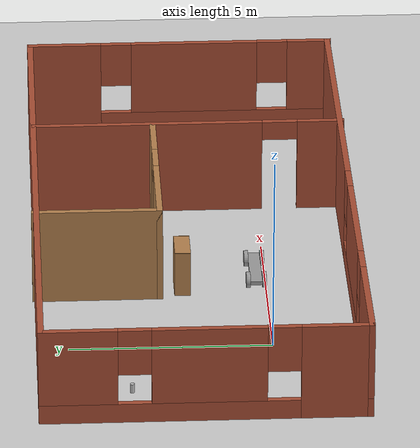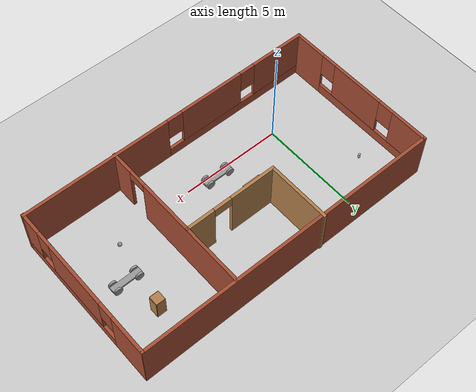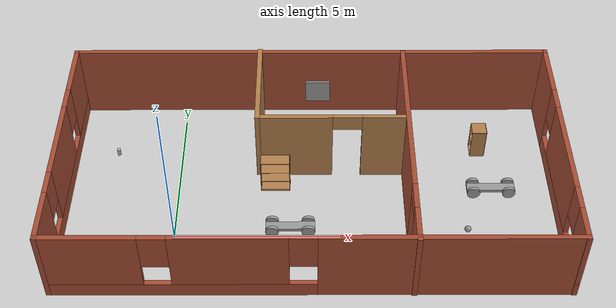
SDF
<sdf version="1.6">
 <world name="default">
  <plugin name="hello" filename="libhello.so"/>
  <light name="sun" type="directional">
   <pose>0 0 10 0 -0 0</pose>
   <diffuse>0.8 0.8 0.8 1</diffuse>
   <specular>0.2 0.2 0.2 1</specular>
   <attenuation>
    <range>1000</range>
    <constant>0.9</constant>
    <linear>0.01</linear>
    <quadratic>0.001</quadratic>
   </attenuation>
   <direction>-0.5 0.1 -0.9</direction>
  </light>
  <model name="ground_plane">
   <static>1</static>
   <link name="link">
    <collision name="collision">
     <geometry><plane><normal>0 0 1</normal><size>100 100</size></plane></geometry>
     <surface>
      <contact><collide_bitmask>65535</collide_bitmask></contact>
      <friction><ode><mu>100</mu><mu2>50</mu2></ode></friction>
     </surface>
    </collision>
    <visual name="visual">
     <cast_shadows>0</cast_shadows>
     <geometry><plane><normal>0 0 1</normal><size>100 100</size></plane></geometry>
     <material>
      <script><uri>file://media/materials/scripts/gazebo.material</uri><name>Gazebo/Grey</name></script>
     </material>
    </visual>
   </link>
  </model>
  <gravity>0 0 -9.8</gravity>
  <magnetic_field>6e-06 2.3e-05 -4.2e-05</magnetic_field>
  <atmosphere type="adiabatic"/>
  <physics name="default_physics" default="0" type="ode">
   <max_step_size>0.001</max_step_size>
   <real_time_factor>1</real_time_factor>
   <real_time_update_rate>1000</real_time_update_rate>
  </physics>
  <scene><ambient>0.4 0.4 0.4 1</ambient><background>0.7 0.7 0.7 1</background><shadows>1</shadows></scene>
  <spherical_coordinates>
   <surface_model>EARTH_WGS84</surface_model>
   <latitude_deg>0</latitude_deg>
   <longitude_deg>0</longitude_deg>
   <elevation>0</elevation>
   <heading_deg>0</heading_deg>
  </spherical_coordinates>
  <model name="my_w">
   <pose>4.16042 1.80706 0 0 -0 0</pose>
   <link name="Wall_0">
    <pose>-7.59042 -0.005682 0 0 -0 1.5708</pose>
    <visual name="Wall_0_Visual_0">
     <pose>-3.12831 0 1.25 0 -0 0</pose>
     <geometry><box><size>1.74339 0.15 2.5</size></box></geometry>
     <material>
      <script><uri>file://media/materials/scripts/gazebo.material</uri><name>Gazebo/Bricks</name></script>
      <ambient>1 1 1 1</ambient>
     </material>
     <meta><layer>0</layer></meta>
    </visual>
    <collision name="Wall_0_Collision_0">
     <geometry><box><size>1.74339 0.15 2.5</size></box></geometry>
     <pose>-3.12831 0 1.25 0 -0 0</pose>
    </collision>
    <visual name="Wall_0_Visual_1">
     <pose>0.871695 0 0.25 0 -0 0</pose>
     <geometry><box><size>6.25661 0.15 0.5</size></box></geometry>
     <material>
      <script><uri>file://media/materials/scripts/gazebo.material</uri><name>Gazebo/Bricks</name></script>
      <ambient>1 1 1 1</ambient>
     </material>
     <meta><layer>0</layer></meta>
    </visual>
    <collision name="Wall_0_Collision_1">
     <geometry><box><size>6.25661 0.15 0.5</size></box></geometry>
     <pose>0.871695 0 0.25 0 -0 0</pose>
    </collision>
    <visual name="Wall_0_Visual_2">
     <pose>-0.076564 0 1.5 0 -0 0</pose>
     <geometry><box><size>2.76009 0.15 2</size></box></geometry>
     <material>
      <script><uri>file://media/materials/scripts/gazebo.material</uri><name>Gazebo/Bricks</name></script>
      <ambient>1 1 1 1</ambient>
     </material>
     <meta><layer>0</layer></meta>
    </visual>
    <collision name="Wall_0_Collision_2">
     <geometry><box><size>2.76009 0.15 2</size></box></geometry>
     <pose>-0.076564 0 1.5 0 -0 0</pose>
    </collision>
    <visual name="Wall_0_Visual_3">
     <pose>3.05174 0 1.5 0 -0 0</pose>
     <geometry><box><size>1.89652 0.15 2</size></box></geometry>
     <material>
      <script><uri>file://media/materials/scripts/gazebo.material</uri><name>Gazebo/Bricks</name></script>
      <ambient>1 1 1 1</ambient>
     </material>
     <meta><layer>0</layer></meta>
    </visual>
    <collision name="Wall_0_Collision_3">
     <geometry><box><size>1.89652 0.15 2</size></box></geometry>
     <pose>3.05174 0 1.5 0 -0 0</pose>
    </collision>
    <visual name="Wall_0_Visual_4">
     <pose>-1.85661 0 1.9 0 -0 0</pose>
     <geometry><box><size>0.8 0.15 1.2</size></box></geometry>
     <material>
      <script><uri>file://media/materials/scripts/gazebo.material</uri><name>Gazebo/Bricks</name></script>
      <ambient>1 1 1 1</ambient>
     </material>
     <meta><layer>0</layer></meta>
    </visual>
    <collision name="Wall_0_Collision_4">
     <geometry><box><size>0.8 0.15 1.2</size></box></geometry>
     <pose>-1.85661 0 1.9 0 -0 0</pose>
    </collision>
    <visual name="Wall_0_Visual_5">
     <pose>1.70348 0 1.9 0 -0 0</pose>
     <geometry><box><size>0.8 0.15 1.2</size></box></geometry>
     <material>
      <script><uri>file://media/materials/scripts/gazebo.material</uri><name>Gazebo/Bricks</name></script>
      <ambient>1 1 1 1</ambient>
     </material>
     <meta><layer>0</layer></meta>
    </visual>
    <collision name="Wall_0_Collision_5">
     <geometry><box><size>0.8 0.15 1.2</size></box></geometry>
     <pose>1.70348 0 1.9 0 -0 0</pose>
    </collision>
   </link>
   <link name="Wall_1">
    <collision name="Wall_1_Collision">
     <geometry><box><size>15.3308 0.15 2.5</size></box></geometry>
     <pose>0 0 1.25 0 -0 0</pose>
    </collision>
    <visual name="Wall_1_Visual">
     <pose>0 0 1.25 0 -0 0</pose>
     <geometry><box><size>15.3308 0.15 2.5</size></box></geometry>
     <material>
      <script><uri>file://media/materials/scripts/gazebo.material</uri><name>Gazebo/Bricks</name></script>
      <ambient>1 1 1 1</ambient>
     </material>
     <meta><layer>0</layer></meta>
    </visual>
    <pose>0 3.91932 0 0 -0 0</pose>
   </link>
   <link name="Wall_2">
    <pose>7.59042 -0.032282 0 0 0 -1.5708</pose>
    <visual name="Wall_2_Visual_0">
     <pose>-3.04481 0 1.25 0 -0 0</pose>
     <geometry><box><size>1.91037 0.15 2.5</size></box></geometry>
     <material>
      <script><uri>file://media/materials/scripts/gazebo.material</uri><name>Gazebo/Bricks</name></script>
      <ambient>1 1 1 1</ambient>
     </material>
     <meta><layer>0</layer></meta>
    </visual>
    <collision name="Wall_2_Collision_0">
     <geometry><box><size>1.91037 0.15 2.5</size></box></geometry>
     <pose>-3.04481 0 1.25 0 -0 0</pose>
    </collision>
    <visual name="Wall_2_Visual_1">
     <pose>0.955187 0 0.25 0 -0 0</pose>
     <geometry><box><size>6.08963 0.15 0.5</size></box></geometry>
     <material>
      <script><uri>file://media/materials/scripts/gazebo.material</uri><name>Gazebo/Bricks</name></script>
      <ambient>1 1 1 1</ambient>
     </material>
     <meta><layer>0</layer></meta>
    </visual>
    <collision name="Wall_2_Collision_1">
     <geometry><box><size>6.08963 0.15 0.5</size></box></geometry>
     <pose>0.955187 0 0.25 0 -0 0</pose>
    </collision>
    <visual name="Wall_2_Visual_2">
     <pose>0.373608 0 1.5 0 -0 0</pose>
     <geometry><box><size>3.32647 0.15 2</size></box></geometry>
     <material>
      <script><uri>file://media/materials/scripts/gazebo.material</uri><name>Gazebo/Bricks</name></script>
      <ambient>1 1 1 1</ambient>
     </material>
     <meta><layer>0</layer></meta>
    </visual>
    <collision name="Wall_2_Collision_2">
     <geometry><box><size>3.32647 0.15 2</size></box></geometry>
     <pose>0.373608 0 1.5 0 -0 0</pose>
    </collision>
    <visual name="Wall_2_Visual_3">
     <pose>3.41842 0 1.5 0 -0 0</pose>
     <geometry><box><size>1.16316 0.15 2</size></box></geometry>
     <material>
      <script><uri>file://media/materials/scripts/gazebo.material</uri><name>Gazebo/Bricks</name></script>
      <ambient>1 1 1 1</ambient>
     </material>
     <meta><layer>0</layer></meta>
    </visual>
    <collision name="Wall_2_Collision_3">
     <geometry><box><size>1.16316 0.15 2</size></box></geometry>
     <pose>3.41842 0 1.5 0 -0 0</pose>
    </collision>
    <visual name="Wall_2_Visual_4">
     <pose>-1.68963 0 1.9 0 -0 0</pose>
     <geometry><box><size>0.8 0.15 1.2</size></box></geometry>
     <material>
      <script><uri>file://media/materials/scripts/gazebo.material</uri><name>Gazebo/Bricks</name></script>
      <ambient>1 1 1 1</ambient>
     </material>
     <meta><layer>0</layer></meta>
    </visual>
    <collision name="Wall_2_Collision_4">
     <geometry><box><size>0.8 0.15 1.2</size></box></geometry>
     <pose>-1.68963 0 1.9 0 -0 0</pose>
    </collision>
    <visual name="Wall_2_Visual_5">
     <pose>2.43684 0 1.9 0 -0 0</pose>
     <geometry><box><size>0.8 0.15 1.2</size></box></geometry>
     <material>
      <script><uri>file://media/materials/scripts/gazebo.material</uri><name>Gazebo/Bricks</name></script>
      <ambient>1 1 1 1</ambient>
     </material>
     <meta><layer>0</layer></meta>
    </visual>
    <collision name="Wall_2_Collision_5">
     <geometry><box><size>0.8 0.15 1.2</size></box></geometry>
     <pose>2.43684 0 1.9 0 -0 0</pose>
    </collision>
   </link>
   <link name="Wall_3">
    <pose>0 -3.93068 0 0 -0 3.14159</pose>
    <visual name="Wall_3_Visual_0">
     <pose>-3.92166 0 1.25 0 -0 0</pose>
     <geometry><box><size>7.48752 0.15 2.5</size></box></geometry>
     <material>
      <script><uri>file://media/materials/scripts/gazebo.material</uri><name>Gazebo/Bricks</name></script>
      <ambient>1 1 1 1</ambient>
     </material>
     <meta><layer>0</layer></meta>
    </visual>
    <collision name="Wall_3_Collision_0">
     <geometry><box><size>7.48752 0.15 2.5</size></box></geometry>
     <pose>-3.92166 0 1.25 0 -0 0</pose>
    </collision>
    <visual name="Wall_3_Visual_1">
     <pose>3.74376 0 0.25 0 -0 0</pose>
     <geometry><box><size>7.84333 0.15 0.5</size></box></geometry>
     <material>
      <script><uri>file://media/materials/scripts/gazebo.material</uri><name>Gazebo/Bricks</name></script>
      <ambient>1 1 1 1</ambient>
     </material>
     <meta><layer>0</layer></meta>
    </visual>
    <collision name="Wall_3_Collision_1">
     <geometry><box><size>7.84333 0.15 0.5</size></box></geometry>
     <pose>3.74376 0 0.25 0 -0 0</pose>
    </collision>
    <visual name="Wall_3_Visual_2">
     <pose>2.30556 0 1.5 0 -0 0</pose>
     <geometry><box><size>3.36692 0.15 2</size></box></geometry>
     <material>
      <script><uri>file://media/materials/scripts/gazebo.material</uri><name>Gazebo/Bricks</name></script>
      <ambient>1 1 1 1</ambient>
     </material>
     <meta><layer>0</layer></meta>
    </visual>
    <collision name="Wall_3_Collision_2">
     <geometry><box><size>3.36692 0.15 2</size></box></geometry>
     <pose>2.30556 0 1.5 0 -0 0</pose>
    </collision>
    <visual name="Wall_3_Visual_3">
     <pose>6.22722 0 1.5 0 -0 0</pose>
     <geometry><box><size>2.8764 0.15 2</size></box></geometry>
     <material>
      <script><uri>file://media/materials/scripts/gazebo.material</uri><name>Gazebo/Bricks</name></script>
      <ambient>1 1 1 1</ambient>
     </material>
     <meta><layer>0</layer></meta>
    </visual>
    <collision name="Wall_3_Collision_3">
     <geometry><box><size>2.8764 0.15 2</size></box></geometry>
     <pose>6.22722 0 1.5 0 -0 0</pose>
    </collision>
    <visual name="Wall_3_Visual_4">
     <pose>0.222097 0 1.9 0 -0 0</pose>
     <geometry><box><size>0.8 0.15 1.2</size></box></geometry>
     <material>
      <script><uri>file://media/materials/scripts/gazebo.material</uri><name>Gazebo/Bricks</name></script>
      <ambient>1 1 1 1</ambient>
     </material>
     <meta><layer>0</layer></meta>
    </visual>
    <collision name="Wall_3_Collision_4">
     <geometry><box><size>0.8 0.15 1.2</size></box></geometry>
     <pose>0.222097 0 1.9 0 -0 0</pose>
    </collision>
    <visual name="Wall_3_Visual_5">
     <pose>4.38902 0 1.9 0 -0 0</pose>
     <geometry><box><size>0.8 0.15 1.2</size></box></geometry>
     <material>
      <script><uri>file://media/materials/scripts/gazebo.material</uri><name>Gazebo/Bricks</name></script>
      <ambient>1 1 1 1</ambient>
     </material>
     <meta><layer>0</layer></meta>
    </visual>
    <collision name="Wall_3_Collision_5">
     <geometry><box><size>0.8 0.15 1.2</size></box></geometry>
     <pose>4.38902 0 1.9 0 -0 0</pose>
    </collision>
   </link>
   <link name="Wall_6">
    <pose>2.97216 -0.042149 0 0 -0 1.5708</pose>
    <visual name="Wall_6_Visual_0">
     <pose>-3.39803 0 1.25 0 -0 0</pose>
     <geometry><box><size>1.20393 0.15 2.5</size></box></geometry>
     <material>
      <script><uri>file://media/materials/scripts/gazebo.material</uri><name>Gazebo/Bricks</name></script>
      <ambient>1 1 1 1</ambient>
     </material>
     <meta><layer>0</layer></meta>
    </visual>
    <collision name="Wall_6_Collision_0">
     <geometry><box><size>1.20393 0.15 2.5</size></box></geometry>
     <pose>-3.39803 0 1.25 0 -0 0</pose>
    </collision>
    <visual name="Wall_6_Visual_1">
     <pose>1.05197 0 1.25 0 -0 0</pose>
     <geometry><box><size>5.89607 0.15 2.5</size></box></geometry>
     <material>
      <script><uri>file://media/materials/scripts/gazebo.material</uri><name>Gazebo/Bricks</name></script>
      <ambient>1 1 1 1</ambient>
     </material>
     <meta><layer>0</layer></meta>
    </visual>
    <collision name="Wall_6_Collision_1">
     <geometry><box><size>5.89607 0.15 2.5</size></box></geometry>
     <pose>1.05197 0 1.25 0 -0 0</pose>
    </collision>
    <visual name="Wall_6_Visual_2">
     <pose>-2.34606 0 2.25 0 -0 0</pose>
     <geometry><box><size>0.9 0.15 0.5</size></box></geometry>
     <material>
      <script><uri>file://media/materials/scripts/gazebo.material</uri><name>Gazebo/Bricks</name></script>
      <ambient>1 1 1 1</ambient>
     </material>
     <meta><layer>0</layer></meta>
    </visual>
    <collision name="Wall_6_Collision_2">
     <geometry><box><size>0.9 0.15 0.5</size></box></geometry>
     <pose>-2.34606 0 2.25 0 -0 0</pose>
    </collision>
   </link>
   <link name="Wall_8">
    <pose>0.649035 0.867148 0 0 -0 3.14159</pose>
    <visual name="Wall_8_Visual_0">
     <pose>-1.64445 0 1.25 0 -0 0</pose>
     <geometry><box><size>1.4611 0.15 2.5</size></box></geometry>
     <material>
      <script><uri>file://media/materials/scripts/gazebo.material</uri><name>Gazebo/Wood</name></script>
      <ambient>1 1 1 1</ambient>
     </material>
     <meta><layer>0</layer></meta>
    </visual>
    <collision name="Wall_8_Collision_0">
     <geometry><box><size>1.4611 0.15 2.5</size></box></geometry>
     <pose>-1.64445 0 1.25 0 -0 0</pose>
    </collision>
    <visual name="Wall_8_Visual_1">
     <pose>1.18055 0 1.25 0 -0 0</pose>
     <geometry><box><size>2.3889 0.15 2.5</size></box></geometry>
     <material>
      <script><uri>file://media/materials/scripts/gazebo.material</uri><name>Gazebo/Wood</name></script>
      <ambient>1 1 1 1</ambient>
     </material>
     <meta><layer>0</layer></meta>
    </visual>
    <collision name="Wall_8_Collision_1">
     <geometry><box><size>2.3889 0.15 2.5</size></box></geometry>
     <pose>1.18055 0 1.25 0 -0 0</pose>
    </collision>
    <visual name="Wall_8_Visual_2">
     <pose>-0.463903 0 2.25 0 -0 0</pose>
     <geometry><box><size>0.9 0.15 0.5</size></box></geometry>
     <material>
      <script><uri>file://media/materials/scripts/gazebo.material</uri><name>Gazebo/Wood</name></script>
      <ambient>1 1 1 1</ambient>
     </material>
     <meta><layer>0</layer></meta>
    </visual>
    <collision name="Wall_8_Collision_2">
     <geometry><box><size>0.9 0.15 0.5</size></box></geometry>
     <pose>-0.463903 0 2.25 0 -0 0</pose>
    </collision>
   </link>
   <link name="Wall_9">
    <collision name="Wall_9_Collision">
     <geometry><box><size>3.25 0.15 2.5</size></box></geometry>
     <pose>0 0 1.25 0 -0 0</pose>
    </collision>
    <visual name="Wall_9_Visual">
     <pose>0 0 1.25 0 -0 0</pose>
     <geometry><box><size>3.25 0.15 2.5</size></box></geometry>
     <material>
      <script><uri>file://media/materials/scripts/gazebo.material</uri><name>Gazebo/Wood</name></script>
      <ambient>1 1 1 1</ambient>
     </material>
     <meta><layer>0</layer></meta>
    </visual>
    <pose>-1.65097 2.41715 0 0 -0 1.5708</pose>
   </link>
   <link name="Window_4">
    <collision name="Window_4_Collision">
     <geometry><box><size>0.8 0.17 0.8</size></box></geometry>
     <pose>0 0 0.4 0 -0 0</pose>
    </collision>
    <visual name="Window_4_Visual">
     <pose>0 0 0.4 0 -0 0</pose>
     <geometry><box><size>0.8 0.17 0.8</size></box></geometry>
     <material>
      <script><uri>file://media/materials/scripts/gazebo.material</uri><name>Gazebo/Grey</name></script>
     </material>
    </visual>
    <pose>0.222915 3.84194 0.5 0 -0 0</pose>
   </link>
   <static>1</static>
  </model>
  <model name="beer">
   <link name="link">
    <pose>0 0 0.115 0 -0 0</pose>
    <inertial>
     <mass>0.39</mass>
     <inertia><ixx>0.00058</ixx><ixy>0</ixy><ixz>0</ixz><iyy>0.00058</iyy><iyz>0</iyz><izz>0.00019</izz></inertia>
    </inertial>
    <collision name="collision">
     <geometry><cylinder><radius>0.055</radius><length>0.23</length></cylinder></geometry>
    </collision>
    <visual name="visual">
     <geometry><cylinder><radius>0.055</radius><length>0.23</length></cylinder></geometry>
     <material>
      <script>
       <uri>model://beer/materials/scripts</uri>
       <uri>model://beer/materials/textures</uri>
       <name>Beer/Diffuse</name>
      </script>
     </material>
    </visual>
   </link>
   <pose>-2.0941 3.52362 -2e-06 1e-06 0 -7e-06</pose>
  </model>
  <model name="cabinet">
   <static>1</static>
   <link name="cabinet_bottom_plate">
    <inertial>
     <pose>0 0 -1 0 -0 0</pose>
     <inertia><ixx>2.05</ixx><ixy>0</ixy><ixz>0</ixz><iyy>2.05</iyy><iyz>0</iyz><izz>2.05</izz></inertia>
     <mass>25</mass>
    </inertial>
    <collision name="cabinet_bottom_plate_geom">
     <pose>0 0 0.01 0 -0 0</pose>
     <geometry><box><size>0.45 0.45 0.02</size></box></geometry>
    </collision>
    <visual name="cabinet_bottom_plate_geom_visual">
     <pose>0 0 0.01 0 -0 0</pose>
     <geometry><box><size>0.45 0.45 0.02</size></box></geometry>
     <material>
      <script><uri>file://media/materials/scripts/gazebo.material</uri><name>Gazebo/Wood</name></script>
     </material>
    </visual>
    <collision name="cabinet_bottom_plate_geom_cabinet_back_plate">
     <pose>0.235 0 0.51 0 -0 0</pose>
     <geometry><box><size>0.02 0.45 1.02</size></box></geometry>
    </collision>
    <visual name="cabinet_bottom_plate_geom_cabinet_back_plate_visual">
     <pose>0.235 0 0.51 0 -0 0</pose>
     <geometry><box><size>0.02 0.45 1.02</size></box></geometry>
     <material>
      <script><uri>file://media/materials/scripts/gazebo.material</uri><name>Gazebo/Wood</name></script>
     </material>
    </visual>
    <collision name="cabinet_bottom_plate_geom_cabinet_left_plate">
     <pose>0 0.235 0.51 0 -0 0</pose>
     <geometry><box><size>0.45 0.02 1.02</size></box></geometry>
    </collision>
    <visual name="cabinet_bottom_plate_geom_cabinet_left_plate_visual">
     <pose>0 0.235 0.51 0 -0 0</pose>
     <geometry><box><size>0.45 0.02 1.02</size></box></geometry>
     <material>
      <script><uri>file://media/materials/scripts/gazebo.material</uri><name>Gazebo/Wood</name></script>
     </material>
    </visual>
    <collision name="cabinet_bottom_plate_geom_cabinet_middle_plate">
     <pose>0 0 0.51 0 -0 0</pose>
     <geometry><box><size>0.45 0.45 0.02</size></box></geometry>
    </collision>
    <visual name="cabinet_bottom_plate_geom_cabinet_middle_plate_visual">
     <pose>0 0 0.51 0 -0 0</pose>
     <geometry><box><size>0.45 0.45 0.02</size></box></geometry>
     <material>
      <script><uri>file://media/materials/scripts/gazebo.material</uri><name>Gazebo/Wood</name></script>
     </material>
    </visual>
    <collision name="cabinet_bottom_plate_geom_cabinet_right_plate">
     <pose>0 -0.235 0.51 0 -0 0</pose>
     <geometry><box><size>0.45 0.02 1.02</size></box></geometry>
    </collision>
    <visual name="cabinet_bottom_plate_geom_cabinet_right_plate_visual">
     <pose>0 -0.235 0.51 0 -0 0</pose>
     <geometry><box><size>0.45 0.02 1.02</size></box></geometry>
     <material>
      <script><uri>file://media/materials/scripts/gazebo.material</uri><name>Gazebo/Wood</name></script>
     </material>
    </visual>
    <collision name="cabinet_bottom_plate_geom_cabinet_top_plate">
     <pose>0 0 1.01 0 -0 0</pose>
     <geometry><box><size>0.45 0.45 0.02</size></box></geometry>
    </collision>
    <visual name="cabinet_bottom_plate_geom_cabinet_top_plate_visual">
     <pose>0 0 1.01 0 -0 0</pose>
     <geometry><box><size>0.45 0.45 0.02</size></box></geometry>
     <material>
      <script><uri>file://media/materials/scripts/gazebo.material</uri><name>Gazebo/Wood</name></script>
     </material>
    </visual>
   </link>
   <pose>9.54457 3.67278 0 0 -0 0</pose>
  </model>
  <model name="bookshelf">
   <static>1</static>
   <link name="link">
    <inertial><mass>1</mass></inertial>
    <collision name="back">
     <pose>0 0.005 0.6 0 -0 0</pose>
     <geometry><box><size>0.9 0.01 1.2</size></box></geometry>
    </collision>
    <visual name="visual1">
     <pose>0 0.005 0.6 0 -0 0</pose>
     <geometry><box><size>0.9 0.01 1.2</size></box></geometry>
     <material>
      <script><uri>file://media/materials/scripts/gazebo.material</uri><name>Gazebo/Wood</name></script>
     </material>
    </visual>
    <collision name="left_side">
     <pose>0.45 -0.195 0.6 0 -0 0</pose>
     <geometry><box><size>0.02 0.4 1.2</size></box></geometry>
    </collision>
    <visual name="visual2">
     <pose>0.45 -0.195 0.6 0 -0 0</pose>
     <geometry><box><size>0.02 0.4 1.2</size></box></geometry>
     <material>
      <script><uri>file://media/materials/scripts/gazebo.material</uri><name>Gazebo/Wood</name></script>
     </material>
    </visual>
    <collision name="right_side">
     <pose>-0.45 -0.195 0.6 0 -0 0</pose>
     <geometry><box><size>0.02 0.4 1.2</size></box></geometry>
    </collision>
    <visual name="visual3">
     <pose>-0.45 -0.195 0.6 0 -0 0</pose>
     <geometry><box><size>0.02 0.4 1.2</size></box></geometry>
     <material>
      <script><uri>file://media/materials/scripts/gazebo.material</uri><name>Gazebo/Wood</name></script>
     </material>
    </visual>
    <collision name="bottom">
     <pose>0 -0.195 0.03 0 -0 0</pose>
     <geometry><box><size>0.88 0.4 0.06</size></box></geometry>
    </collision>
    <visual name="visual4">
     <pose>0 -0.195 0.03 0 -0 0</pose>
     <geometry><box><size>0.88 0.4 0.06</size></box></geometry>
     <material>
      <script><uri>file://media/materials/scripts/gazebo.material</uri><name>Gazebo/Wood</name></script>
     </material>
    </visual>
    <collision name="top">
     <pose>0 -0.195 1.19 0 -0 0</pose>
     <geometry><box><size>0.88 0.4 0.02</size></box></geometry>
    </collision>
    <visual name="visual5">
     <pose>0 -0.195 1.19 0 -0 0</pose>
     <geometry><box><size>0.88 0.4 0.02</size></box></geometry>
     <material>
      <script><uri>file://media/materials/scripts/gazebo.material</uri><name>Gazebo/Wood</name></script>
     </material>
    </visual>
    <collision name="low_shelf">
     <pose>0 -0.195 0.43 0 -0 0</pose>
     <geometry><box><size>0.88 0.4 0.02</size></box></geometry>
    </collision>
    <visual name="visual6">
     <pose>0 -0.195 0.43 0 -0 0</pose>
     <geometry><box><size>0.88 0.4 0.02</size></box></geometry>
     <material>
      <script><uri>file://media/materials/scripts/gazebo.material</uri><name>Gazebo/Wood</name></script>
     </material>
    </visual>
    <collision name="high_shelf">
     <pose>0 -0.195 0.8 0 -0 0</pose>
     <geometry><box><size>0.88 0.4 0.02</size></box></geometry>
    </collision>
    <visual name="visual7">
     <pose>0 -0.195 0.8 0 -0 0</pose>
     <geometry><box><size>0.88 0.4 0.02</size></box></geometry>
     <material>
      <script><uri>file://media/materials/scripts/gazebo.material</uri><name>Gazebo/Wood</name></script>
     </material>
    </visual>
   </link>
   <pose>3.03929 2.29732 0 0 -0 0</pose>
  </model>
  <model name="robot3">
   <link name="link_0">
    <inertial>
     <mass>1</mass>
     <inertia>
      <ixx>0.166667</ixx>
      <ixy>0</ixy>
      <ixz>0</ixz>
      <iyy>0.166667</iyy>
      <iyz>0</iyz>
      <izz>0.166667</izz>
     </inertia>
    </inertial>
    <visual name="visual">
     <geometry><box><size>1.5 0.3 0.1</size></box></geometry>
     <material>
      <lighting>1</lighting>
      <script><uri>file://media/materials/scripts/gazebo.material</uri><name>Gazebo/Grey</name></script>
      <shader type="pixel"><normal_map>__default__</normal_map></shader>
      <ambient>0.3 0.3 0.3 1</ambient>
      <diffuse>0.7 0.7 0.7 1</diffuse>
      <specular>0.01 0.01 0.01 1</specular>
      <emissive>0 0 0 1</emissive>
     </material>
    </visual>
    <collision name="collision">
     <geometry><box><size>1.5 0.3 0.1</size></box></geometry>
     <surface>
      <friction>
       <ode><mu>1</mu><mu2>1</mu2><fdir1>0 0 0</fdir1><slip1>0</slip1><slip2>0</slip2></ode>
       <torsional>
        <coefficient>1</coefficient>
        <patch_radius>0</patch_radius>
        <surface_radius>0</surface_radius>
        <use_patch_radius>1</use_patch_radius>
        <ode><slip>0</slip></ode>
       </torsional>
      </friction>
      <bounce><restitution_coefficient>0</restitution_coefficient><threshold>1e+06</threshold></bounce>
      <contact>
       <collide_without_contact>0</collide_without_contact>
       <collide_without_contact_bitmask>1</collide_without_contact_bitmask>
       <collide_bitmask>1</collide_bitmask>
       <ode>
        <soft_cfm>0</soft_cfm>
        <soft_erp>0.2</soft_erp>
        <kp>1e+13</kp>
        <kd>1</kd>
        <max_vel>0.01</max_vel>
        <min_depth>0</min_depth>
       </ode>
       <bullet>
        <split_impulse>1</split_impulse>
        <split_impulse_penetration_threshold>-0.01</split_impulse_penetration_threshold>
        <soft_cfm>0</soft_cfm>
        <soft_erp>0.2</soft_erp>
        <kp>1e+13</kp>
        <kd>1</kd>
       </bullet>
      </contact>
     </surface>
    </collision>
   </link>
   <link name="link_2">
    <pose>-0.55 -0.200019 0 1.5707 -0 0</pose>
    <inertial>
     <mass>1</mass>
     <inertia><ixx>0.145833</ixx><ixy>0</ixy><ixz>0</ixz><iyy>0.145833</iyy><iyz>0</iyz><izz>0.125</izz></inertia>
     <pose>0 0 0.2 1.5707 -0 0</pose>
    </inertial>
    <visual name="visual">
     <geometry><cylinder><radius>0.2</radius><length>0.1</length></cylinder></geometry>
     <material>
      <lighting>1</lighting>
      <script><uri>file://media/materials/scripts/gazebo.material</uri><name>Gazebo/Grey</name></script>
      <shader type="pixel"><normal_map>__default__</normal_map></shader>
      <ambient>0.3 0.3 0.3 1</ambient>
      <diffuse>0.7 0.7 0.7 1</diffuse>
      <specular>0.01 0.01 0.01 1</specular>
      <emissive>0 0 0 1</emissive>
     </material>
    </visual>
    <collision name="collision">
     <geometry><cylinder><radius>0.2</radius><length>0.1</length></cylinder></geometry>
     <surface>
      <friction>
       <ode><mu>1</mu><mu2>1</mu2><fdir1>0 0 0</fdir1><slip1>0</slip1><slip2>0</slip2></ode>
       <torsional>
        <coefficient>1</coefficient>
        <patch_radius>0</patch_radius>
        <surface_radius>0</surface_radius>
        <use_patch_radius>1</use_patch_radius>
        <ode><slip>0</slip></ode>
       </torsional>
      </friction>
      <bounce><restitution_coefficient>0</restitution_coefficient><threshold>1e+06</threshold></bounce>
      <contact>
       <collide_without_contact>0</collide_without_contact>
       <collide_without_contact_bitmask>1</collide_without_contact_bitmask>
       <collide_bitmask>1</collide_bitmask>
       <ode>
        <soft_cfm>0</soft_cfm>
        <soft_erp>0.2</soft_erp>
        <kp>1e+13</kp>
        <kd>1</kd>
        <max_vel>0.01</max_vel>
        <min_depth>0</min_depth>
       </ode>
       <bullet>
        <split_impulse>1</split_impulse>
        <split_impulse_penetration_threshold>-0.01</split_impulse_penetration_threshold>
        <soft_cfm>0</soft_cfm>
        <soft_erp>0.2</soft_erp>
        <kp>1e+13</kp>
        <kd>1</kd>
       </bullet>
      </contact>
     </surface>
    </collision>
   </link>
   <link name="link_2_clone">
    <pose>0.55 -0.200019 0 1.5707 -0 0</pose>
    <inertial>
     <mass>1</mass>
     <inertia><ixx>0.145833</ixx><ixy>0</ixy><ixz>0</ixz><iyy>0.145833</iyy><iyz>0</iyz><izz>0.125</izz></inertia>
     <pose>0 0 0.2 1.5707 -0 0</pose>
    </inertial>
    <visual name="visual">
     <geometry><cylinder><radius>0.2</radius><length>0.1</length></cylinder></geometry>
     <material>
      <lighting>1</lighting>
      <script><uri>file://media/materials/scripts/gazebo.material</uri><name>Gazebo/Grey</name></script>
      <shader type="pixel"><normal_map>__default__</normal_map></shader>
      <ambient>0.3 0.3 0.3 1</ambient>
      <diffuse>0.7 0.7 0.7 1</diffuse>
      <specular>0.01 0.01 0.01 1</specular>
      <emissive>0 0 0 1</emissive>
     </material>
    </visual>
    <collision name="collision">
     <geometry><cylinder><radius>0.2</radius><length>0.1</length></cylinder></geometry>
     <surface>
      <friction>
       <ode><mu>1</mu><mu2>1</mu2><fdir1>0 0 0</fdir1><slip1>0</slip1><slip2>0</slip2></ode>
       <torsional>
        <coefficient>1</coefficient>
        <patch_radius>0</patch_radius>
        <surface_radius>0</surface_radius>
        <use_patch_radius>1</use_patch_radius>
        <ode><slip>0</slip></ode>
       </torsional>
      </friction>
      <bounce><restitution_coefficient>0</restitution_coefficient><threshold>1e+06</threshold></bounce>
      <contact>
       <collide_without_contact>0</collide_without_contact>
       <collide_without_contact_bitmask>1</collide_without_contact_bitmask>
       <collide_bitmask>1</collide_bitmask>
       <ode>
        <soft_cfm>0</soft_cfm>
        <soft_erp>0.2</soft_erp>
        <kp>1e+13</kp>
        <kd>1</kd>
        <max_vel>0.01</max_vel>
        <min_depth>0</min_depth>
       </ode>
       <bullet>
        <split_impulse>1</split_impulse>
        <split_impulse_penetration_threshold>-0.01</split_impulse_penetration_threshold>
        <soft_cfm>0</soft_cfm>
        <soft_erp>0.2</soft_erp>
        <kp>1e+13</kp>
        <kd>1</kd>
       </bullet>
      </contact>
     </surface>
    </collision>
   </link>
   <link name="link_2_clone_0">
    <pose>0.55 0.200019 0 1.5707 -0 0</pose>
    <inertial>
     <mass>1</mass>
     <inertia><ixx>0.145833</ixx><ixy>0</ixy><ixz>0</ixz><iyy>0.145833</iyy><iyz>0</iyz><izz>0.125</izz></inertia>
     <pose>0 0 0.2 1.5707 -0 0</pose>
    </inertial>
    <visual name="visual">
     <geometry><cylinder><radius>0.2</radius><length>0.1</length></cylinder></geometry>
     <material>
      <lighting>1</lighting>
      <script><uri>file://media/materials/scripts/gazebo.material</uri><name>Gazebo/Grey</name></script>
      <shader type="pixel"><normal_map>__default__</normal_map></shader>
      <ambient>0.3 0.3 0.3 1</ambient>
      <diffuse>0.7 0.7 0.7 1</diffuse>
      <specular>0.01 0.01 0.01 1</specular>
      <emissive>0 0 0 1</emissive>
     </material>
    </visual>
    <collision name="collision">
     <geometry><cylinder><radius>0.2</radius><length>0.1</length></cylinder></geometry>
     <surface>
      <friction>
       <ode><mu>1</mu><mu2>1</mu2><fdir1>0 0 0</fdir1><slip1>0</slip1><slip2>0</slip2></ode>
       <torsional>
        <coefficient>1</coefficient>
        <patch_radius>0</patch_radius>
        <surface_radius>0</surface_radius>
        <use_patch_radius>1</use_patch_radius>
        <ode><slip>0</slip></ode>
       </torsional>
      </friction>
      <bounce><restitution_coefficient>0</restitution_coefficient><threshold>1e+06</threshold></bounce>
      <contact>
       <collide_without_contact>0</collide_without_contact>
       <collide_without_contact_bitmask>1</collide_without_contact_bitmask>
       <collide_bitmask>1</collide_bitmask>
       <ode>
        <soft_cfm>0</soft_cfm>
        <soft_erp>0.2</soft_erp>
        <kp>1e+13</kp>
        <kd>1</kd>
        <max_vel>0.01</max_vel>
        <min_depth>0</min_depth>
       </ode>
       <bullet>
        <split_impulse>1</split_impulse>
        <split_impulse_penetration_threshold>-0.01</split_impulse_penetration_threshold>
        <soft_cfm>0</soft_cfm>
        <soft_erp>0.2</soft_erp>
        <kp>1e+13</kp>
        <kd>1</kd>
       </bullet>
      </contact>
     </surface>
    </collision>
   </link>
   <link name="link_2_clone_1">
    <pose>-0.55 0.200019 0 1.5707 -0 0</pose>
    <inertial>
     <mass>1</mass>
     <inertia><ixx>0.145833</ixx><ixy>0</ixy><ixz>0</ixz><iyy>0.145833</iyy><iyz>0</iyz><izz>0.125</izz></inertia>
     <pose>0 0 0.2 1.5707 -0 0</pose>
    </inertial>
    <visual name="visual">
     <geometry><cylinder><radius>0.2</radius><length>0.1</length></cylinder></geometry>
     <material>
      <lighting>1</lighting>
      <script><uri>file://media/materials/scripts/gazebo.material</uri><name>Gazebo/Grey</name></script>
      <shader type="pixel"><normal_map>__default__</normal_map></shader>
      <ambient>0.3 0.3 0.3 1</ambient>
      <diffuse>0.7 0.7 0.7 1</diffuse>
      <specular>0.01 0.01 0.01 1</specular>
      <emissive>0 0 0 1</emissive>
     </material>
    </visual>
    <collision name="collision">
     <geometry><cylinder><radius>0.2</radius><length>0.1</length></cylinder></geometry>
     <surface>
      <friction>
       <ode><mu>1</mu><mu2>1</mu2><fdir1>0 0 0</fdir1><slip1>0</slip1><slip2>0</slip2></ode>
       <torsional>
        <coefficient>1</coefficient>
        <patch_radius>0</patch_radius>
        <surface_radius>0</surface_radius>
        <use_patch_radius>1</use_patch_radius>
        <ode><slip>0</slip></ode>
       </torsional>
      </friction>
      <bounce><restitution_coefficient>0</restitution_coefficient><threshold>1e+06</threshold></bounce>
      <contact>
       <collide_without_contact>0</collide_without_contact>
       <collide_without_contact_bitmask>1</collide_without_contact_bitmask>
       <collide_bitmask>1</collide_bitmask>
       <ode>
        <soft_cfm>0</soft_cfm>
        <soft_erp>0.2</soft_erp>
        <kp>1e+13</kp>
        <kd>1</kd>
        <max_vel>0.01</max_vel>
        <min_depth>0</min_depth>
       </ode>
       <bullet>
        <split_impulse>1</split_impulse>
        <split_impulse_penetration_threshold>-0.01</split_impulse_penetration_threshold>
        <soft_cfm>0</soft_cfm>
        <soft_erp>0.2</soft_erp>
        <kp>1e+13</kp>
        <kd>1</kd>
       </bullet>
      </contact>
     </surface>
    </collision>
   </link>
   <joint name="link_0_JOINT_3" type="revolute">
    <parent>link_0</parent>
    <child>link_2</child>
    <axis>
     <xyz>0 0 1</xyz>
     <use_parent_model_frame>0</use_parent_model_frame>
     <limit>
      <lower>-1.79769e+308</lower>
      <upper>1.79769e+308</upper>
      <effort>-1</effort>
      <velocity>-1</velocity>
     </limit>
     <dynamics>
      <spring_reference>0</spring_reference>
      <spring_stiffness>0</spring_stiffness>
      <damping>0</damping>
     </dynamics>
    </axis>
    <physics>
     <ode><limit><cfm>0</cfm><erp>0.2</erp></limit><suspension><cfm>0</cfm><erp>0.2</erp></suspension></ode>
    </physics>
   </joint>
   <joint name="link_0_JOINT_4" type="revolute">
    <parent>link_0</parent>
    <child>link_2_clone_1</child>
    <axis>
     <xyz>0 0 1</xyz>
     <use_parent_model_frame>0</use_parent_model_frame>
     <limit>
      <lower>-1.79769e+308</lower>
      <upper>1.79769e+308</upper>
      <effort>-1</effort>
      <velocity>-1</velocity>
     </limit>
     <dynamics>
      <spring_reference>0</spring_reference>
      <spring_stiffness>0</spring_stiffness>
      <damping>0</damping>
     </dynamics>
    </axis>
    <physics>
     <ode><limit><cfm>0</cfm><erp>0.2</erp></limit><suspension><cfm>0</cfm><erp>0.2</erp></suspension></ode>
    </physics>
   </joint>
   <joint name="link_0_JOINT_5" type="revolute">
    <parent>link_0</parent>
    <child>link_2_clone_0</child>
    <axis>
     <xyz>0 0 1</xyz>
     <use_parent_model_frame>0</use_parent_model_frame>
     <limit>
      <lower>-1.79769e+308</lower>
      <upper>1.79769e+308</upper>
      <effort>-1</effort>
      <velocity>-1</velocity>
     </limit>
     <dynamics>
      <spring_reference>0</spring_reference>
      <spring_stiffness>0</spring_stiffness>
      <damping>0</damping>
     </dynamics>
    </axis>
    <physics>
     <ode><limit><cfm>0</cfm><erp>0.2</erp></limit><suspension><cfm>0</cfm><erp>0.2</erp></suspension></ode>
    </physics>
   </joint>
   <joint name="link_2_clone_JOINT_6" type="revolute">
    <parent>link_0</parent>
    <child>link_2_clone</child>
    <axis>
     <xyz>0 0 1</xyz>
     <use_parent_model_frame>0</use_parent_model_frame>
     <limit>
      <lower>-1.79769e+308</lower>
      <upper>1.79769e+308</upper>
      <effort>-1</effort>
      <velocity>-1</velocity>
     </limit>
     <dynamics>
      <spring_reference>0</spring_reference>
      <spring_stiffness>0</spring_stiffness>
      <damping>0</damping>
     </dynamics>
    </axis>
    <physics>
     <ode><limit><cfm>0</cfm><erp>0.2</erp></limit><suspension><cfm>0</cfm><erp>0.2</erp></suspension></ode>
    </physics>
   </joint>
   <static>0</static>
   <pose>3.52033 0.245673 0.200016 9.7e-05 -6e-06 0.001611</pose>
  </model>
  <model name="robot3_clone">
   <link name="link_0">
    <inertial>
     <mass>1</mass>
     <inertia>
      <ixx>0.166667</ixx>
      <ixy>0</ixy>
      <ixz>0</ixz>
      <iyy>0.166667</iyy>
      <iyz>0</iyz>
      <izz>0.166667</izz>
     </inertia>
    </inertial>
    <visual name="visual">
     <geometry><box><size>1.5 0.3 0.1</size></box></geometry>
     <material>
      <lighting>1</lighting>
      <script><uri>file://media/materials/scripts/gazebo.material</uri><name>Gazebo/Grey</name></script>
      <shader type="pixel"><normal_map>__default__</normal_map></shader>
      <ambient>0.3 0.3 0.3 1</ambient>
      <diffuse>0.7 0.7 0.7 1</diffuse>
      <specular>0.01 0.01 0.01 1</specular>
      <emissive>0 0 0 1</emissive>
     </material>
    </visual>
    <collision name="collision">
     <geometry><box><size>1.5 0.3 0.1</size></box></geometry>
     <surface>
      <friction>
       <ode><mu>1</mu><mu2>1</mu2><fdir1>0 0 0</fdir1><slip1>0</slip1><slip2>0</slip2></ode>
       <torsional>
        <coefficient>1</coefficient>
        <patch_radius>0</patch_radius>
        <surface_radius>0</surface_radius>
        <use_patch_radius>1</use_patch_radius>
        <ode><slip>0</slip></ode>
       </torsional>
      </friction>
      <bounce><restitution_coefficient>0</restitution_coefficient><threshold>1e+06</threshold></bounce>
      <contact>
       <collide_without_contact>0</collide_without_contact>
       <collide_without_contact_bitmask>1</collide_without_contact_bitmask>
       <collide_bitmask>1</collide_bitmask>
       <ode>
        <soft_cfm>0</soft_cfm>
        <soft_erp>0.2</soft_erp>
        <kp>1e+13</kp>
        <kd>1</kd>
        <max_vel>0.01</max_vel>
        <min_depth>0</min_depth>
       </ode>
       <bullet>
        <split_impulse>1</split_impulse>
        <split_impulse_penetration_threshold>-0.01</split_impulse_penetration_threshold>
        <soft_cfm>0</soft_cfm>
        <soft_erp>0.2</soft_erp>
        <kp>1e+13</kp>
        <kd>1</kd>
       </bullet>
      </contact>
     </surface>
    </collision>
   </link>
   <link name="link_2">
    <pose>-0.55 -0.200019 0 1.5707 -0 0</pose>
    <inertial>
     <mass>1</mass>
     <inertia><ixx>0.145833</ixx><ixy>0</ixy><ixz>0</ixz><iyy>0.145833</iyy><iyz>0</iyz><izz>0.125</izz></inertia>
     <pose>0 0 0.2 1.5707 -0 0</pose>
    </inertial>
    <visual name="visual">
     <geometry><cylinder><radius>0.2</radius><length>0.1</length></cylinder></geometry>
     <material>
      <lighting>1</lighting>
      <script><uri>file://media/materials/scripts/gazebo.material</uri><name>Gazebo/Grey</name></script>
      <shader type="pixel"><normal_map>__default__</normal_map></shader>
      <ambient>0.3 0.3 0.3 1</ambient>
      <diffuse>0.7 0.7 0.7 1</diffuse>
      <specular>0.01 0.01 0.01 1</specular>
      <emissive>0 0 0 1</emissive>
     </material>
    </visual>
    <collision name="collision">
     <geometry><cylinder><radius>0.2</radius><length>0.1</length></cylinder></geometry>
     <surface>
      <friction>
       <ode><mu>1</mu><mu2>1</mu2><fdir1>0 0 0</fdir1><slip1>0</slip1><slip2>0</slip2></ode>
       <torsional>
        <coefficient>1</coefficient>
        <patch_radius>0</patch_radius>
        <surface_radius>0</surface_radius>
        <use_patch_radius>1</use_patch_radius>
        <ode><slip>0</slip></ode>
       </torsional>
      </friction>
      <bounce><restitution_coefficient>0</restitution_coefficient><threshold>1e+06</threshold></bounce>
      <contact>
       <collide_without_contact>0</collide_without_contact>
       <collide_without_contact_bitmask>1</collide_without_contact_bitmask>
       <collide_bitmask>1</collide_bitmask>
       <ode>
        <soft_cfm>0</soft_cfm>
        <soft_erp>0.2</soft_erp>
        <kp>1e+13</kp>
        <kd>1</kd>
        <max_vel>0.01</max_vel>
        <min_depth>0</min_depth>
       </ode>
       <bullet>
        <split_impulse>1</split_impulse>
        <split_impulse_penetration_threshold>-0.01</split_impulse_penetration_threshold>
        <soft_cfm>0</soft_cfm>
        <soft_erp>0.2</soft_erp>
        <kp>1e+13</kp>
        <kd>1</kd>
       </bullet>
      </contact>
     </surface>
    </collision>
   </link>
   <link name="link_2_clone">
    <pose>0.55 -0.200019 0 1.5707 -0 0</pose>
    <inertial>
     <mass>1</mass>
     <inertia><ixx>0.145833</ixx><ixy>0</ixy><ixz>0</ixz><iyy>0.145833</iyy><iyz>0</iyz><izz>0.125</izz></inertia>
     <pose>0 0 0.2 1.5707 -0 0</pose>
    </inertial>
    <visual name="visual">
     <geometry><cylinder><radius>0.2</radius><length>0.1</length></cylinder></geometry>
     <material>
      <lighting>1</lighting>
      <script><uri>file://media/materials/scripts/gazebo.material</uri><name>Gazebo/Grey</name></script>
      <shader type="pixel"><normal_map>__default__</normal_map></shader>
      <ambient>0.3 0.3 0.3 1</ambient>
      <diffuse>0.7 0.7 0.7 1</diffuse>
      <specular>0.01 0.01 0.01 1</specular>
      <emissive>0 0 0 1</emissive>
     </material>
    </visual>
    <collision name="collision">
     <geometry><cylinder><radius>0.2</radius><length>0.1</length></cylinder></geometry>
     <surface>
      <friction>
       <ode><mu>1</mu><mu2>1</mu2><fdir1>0 0 0</fdir1><slip1>0</slip1><slip2>0</slip2></ode>
       <torsional>
        <coefficient>1</coefficient>
        <patch_radius>0</patch_radius>
        <surface_radius>0</surface_radius>
        <use_patch_radius>1</use_patch_radius>
        <ode><slip>0</slip></ode>
       </torsional>
      </friction>
      <bounce><restitution_coefficient>0</restitution_coefficient><threshold>1e+06</threshold></bounce>
      <contact>
       <collide_without_contact>0</collide_without_contact>
       <collide_without_contact_bitmask>1</collide_without_contact_bitmask>
       <collide_bitmask>1</collide_bitmask>
       <ode>
        <soft_cfm>0</soft_cfm>
        <soft_erp>0.2</soft_erp>
        <kp>1e+13</kp>
        <kd>1</kd>
        <max_vel>0.01</max_vel>
        <min_depth>0</min_depth>
       </ode>
       <bullet>
        <split_impulse>1</split_impulse>
        <split_impulse_penetration_threshold>-0.01</split_impulse_penetration_threshold>
        <soft_cfm>0</soft_cfm>
        <soft_erp>0.2</soft_erp>
        <kp>1e+13</kp>
        <kd>1</kd>
       </bullet>
      </contact>
     </surface>
    </collision>
   </link>
   <link name="link_2_clone_0">
    <pose>0.55 0.200019 0 1.5707 -0 0</pose>
    <inertial>
     <mass>1</mass>
     <inertia><ixx>0.145833</ixx><ixy>0</ixy><ixz>0</ixz><iyy>0.145833</iyy><iyz>0</iyz><izz>0.125</izz></inertia>
     <pose>0 0 0.2 1.5707 -0 0</pose>
    </inertial>
    <visual name="visual">
     <geometry><cylinder><radius>0.2</radius><length>0.1</length></cylinder></geometry>
     <material>
      <lighting>1</lighting>
      <script><uri>file://media/materials/scripts/gazebo.material</uri><name>Gazebo/Grey</name></script>
      <shader type="pixel"><normal_map>__default__</normal_map></shader>
      <ambient>0.3 0.3 0.3 1</ambient>
      <diffuse>0.7 0.7 0.7 1</diffuse>
      <specular>0.01 0.01 0.01 1</specular>
      <emissive>0 0 0 1</emissive>
     </material>
    </visual>
    <collision name="collision">
     <geometry><cylinder><radius>0.2</radius><length>0.1</length></cylinder></geometry>
     <surface>
      <friction>
       <ode><mu>1</mu><mu2>1</mu2><fdir1>0 0 0</fdir1><slip1>0</slip1><slip2>0</slip2></ode>
       <torsional>
        <coefficient>1</coefficient>
        <patch_radius>0</patch_radius>
        <surface_radius>0</surface_radius>
        <use_patch_radius>1</use_patch_radius>
        <ode><slip>0</slip></ode>
       </torsional>
      </friction>
      <bounce><restitution_coefficient>0</restitution_coefficient><threshold>1e+06</threshold></bounce>
      <contact>
       <collide_without_contact>0</collide_without_contact>
       <collide_without_contact_bitmask>1</collide_without_contact_bitmask>
       <collide_bitmask>1</collide_bitmask>
       <ode>
        <soft_cfm>0</soft_cfm>
        <soft_erp>0.2</soft_erp>
        <kp>1e+13</kp>
        <kd>1</kd>
        <max_vel>0.01</max_vel>
        <min_depth>0</min_depth>
       </ode>
       <bullet>
        <split_impulse>1</split_impulse>
        <split_impulse_penetration_threshold>-0.01</split_impulse_penetration_threshold>
        <soft_cfm>0</soft_cfm>
        <soft_erp>0.2</soft_erp>
        <kp>1e+13</kp>
        <kd>1</kd>
       </bullet>
      </contact>
     </surface>
    </collision>
   </link>
   <link name="link_2_clone_1">
    <pose>-0.55 0.200019 0 1.5707 -0 0</pose>
    <inertial>
     <mass>1</mass>
     <inertia><ixx>0.145833</ixx><ixy>0</ixy><ixz>0</ixz><iyy>0.145833</iyy><iyz>0</iyz><izz>0.125</izz></inertia>
     <pose>0 0 0.2 1.5707 -0 0</pose>
    </inertial>
    <visual name="visual">
     <geometry><cylinder><radius>0.2</radius><length>0.1</length></cylinder></geometry>
     <material>
      <lighting>1</lighting>
      <script><uri>file://media/materials/scripts/gazebo.material</uri><name>Gazebo/Grey</name></script>
      <shader type="pixel"><normal_map>__default__</normal_map></shader>
      <ambient>0.3 0.3 0.3 1</ambient>
      <diffuse>0.7 0.7 0.7 1</diffuse>
      <specular>0.01 0.01 0.01 1</specular>
      <emissive>0 0 0 1</emissive>
     </material>
    </visual>
    <collision name="collision">
     <geometry><cylinder><radius>0.2</radius><length>0.1</length></cylinder></geometry>
     <surface>
      <friction>
       <ode><mu>1</mu><mu2>1</mu2><fdir1>0 0 0</fdir1><slip1>0</slip1><slip2>0</slip2></ode>
       <torsional>
        <coefficient>1</coefficient>
        <patch_radius>0</patch_radius>
        <surface_radius>0</surface_radius>
        <use_patch_radius>1</use_patch_radius>
        <ode><slip>0</slip></ode>
       </torsional>
      </friction>
      <bounce><restitution_coefficient>0</restitution_coefficient><threshold>1e+06</threshold></bounce>
      <contact>
       <collide_without_contact>0</collide_without_contact>
       <collide_without_contact_bitmask>1</collide_without_contact_bitmask>
       <collide_bitmask>1</collide_bitmask>
       <ode>
        <soft_cfm>0</soft_cfm>
        <soft_erp>0.2</soft_erp>
        <kp>1e+13</kp>
        <kd>1</kd>
        <max_vel>0.01</max_vel>
        <min_depth>0</min_depth>
       </ode>
       <bullet>
        <split_impulse>1</split_impulse>
        <split_impulse_penetration_threshold>-0.01</split_impulse_penetration_threshold>
        <soft_cfm>0</soft_cfm>
        <soft_erp>0.2</soft_erp>
        <kp>1e+13</kp>
        <kd>1</kd>
       </bullet>
      </contact>
     </surface>
    </collision>
   </link>
   <joint name="link_0_JOINT_3" type="revolute">
    <parent>link_0</parent>
    <child>link_2</child>
    <axis>
     <xyz>0 0 1</xyz>
     <use_parent_model_frame>0</use_parent_model_frame>
     <limit>
      <lower>-1.79769e+308</lower>
      <upper>1.79769e+308</upper>
      <effort>-1</effort>
      <velocity>-1</velocity>
     </limit>
     <dynamics>
      <spring_reference>0</spring_reference>
      <spring_stiffness>0</spring_stiffness>
      <damping>0</damping>
     </dynamics>
    </axis>
    <physics>
     <ode><limit><cfm>0</cfm><erp>0.2</erp></limit><suspension><cfm>0</cfm><erp>0.2</erp></suspension></ode>
    </physics>
   </joint>
   <joint name="link_0_JOINT_4" type="revolute">
    <parent>link_0</parent>
    <child>link_2_clone_1</child>
    <axis>
     <xyz>0 0 1</xyz>
     <use_parent_model_frame>0</use_parent_model_frame>
     <limit>
      <lower>-1.79769e+308</lower>
      <upper>1.79769e+308</upper>
      <effort>-1</effort>
      <velocity>-1</velocity>
     </limit>
     <dynamics>
      <spring_reference>0</spring_reference>
      <spring_stiffness>0</spring_stiffness>
      <damping>0</damping>
     </dynamics>
    </axis>
    <physics>
     <ode><limit><cfm>0</cfm><erp>0.2</erp></limit><suspension><cfm>0</cfm><erp>0.2</erp></suspension></ode>
    </physics>
   </joint>
   <joint name="link_0_JOINT_5" type="revolute">
    <parent>link_0</parent>
    <child>link_2_clone_0</child>
    <axis>
     <xyz>0 0 1</xyz>
     <use_parent_model_frame>0</use_parent_model_frame>
     <limit>
      <lower>-1.79769e+308</lower>
      <upper>1.79769e+308</upper>
      <effort>-1</effort>
      <velocity>-1</velocity>
     </limit>
     <dynamics>
      <spring_reference>0</spring_reference>
      <spring_stiffness>0</spring_stiffness>
      <damping>0</damping>
     </dynamics>
    </axis>
    <physics>
     <ode><limit><cfm>0</cfm><erp>0.2</erp></limit><suspension><cfm>0</cfm><erp>0.2</erp></suspension></ode>
    </physics>
   </joint>
   <joint name="link_2_clone_JOINT_6" type="revolute">
    <parent>link_0</parent>
    <child>link_2_clone</child>
    <axis>
     <xyz>0 0 1</xyz>
     <use_parent_model_frame>0</use_parent_model_frame>
     <limit>
      <lower>-1.79769e+308</lower>
      <upper>1.79769e+308</upper>
      <effort>-1</effort>
      <velocity>-1</velocity>
     </limit>
     <dynamics>
      <spring_reference>0</spring_reference>
      <spring_stiffness>0</spring_stiffness>
      <damping>0</damping>
     </dynamics>
    </axis>
    <physics>
     <ode><limit><cfm>0</cfm><erp>0.2</erp></limit><suspension><cfm>0</cfm><erp>0.2</erp></suspension></ode>
    </physics>
   </joint>
   <static>0</static>
   <pose>9.79304 1.82594 0.200015 9.7e-05 -8e-06 0.002045</pose>
  </model>
  <model name="my_ball">
   <link name="link">
    <inertial>
     <mass>1</mass>
     <inertia><ixx>0.1</ixx><ixy>0</ixy><ixz>0</ixz><iyy>0.1</iyy><iyz>0</iyz><izz>0.1</izz></inertia>
    </inertial>
    <visual name="visual">
     <geometry><sphere><radius>0.1</radius></sphere></geometry>
     <material>
      <script><name>Gazebo/Grey</name><uri>file://media/materials/scripts/gazebo.material</uri></script>
      <shader type="pixel"><normal_map>__default__</normal_map></shader>
      <ambient>1 1 1 1</ambient>
      <diffuse>1 1 1 1</diffuse>
      <specular>1 1 1 1</specular>
      <emissive>1 1 1 1</emissive>
     </material>
    </visual>
    <collision name="collision">
     <geometry><sphere><radius>0.1</radius></sphere></geometry>
     <surface>
      <friction>
       <ode><mu>1</mu><mu2>1</mu2><fdir1>0 0 0</fdir1><slip1>0</slip1><slip2>0</slip2></ode>
       <torsional>
        <coefficient>1</coefficient>
        <patch_radius>0</patch_radius>
        <surface_radius>0</surface_radius>
        <use_patch_radius>1</use_patch_radius>
        <ode><slip>0</slip></ode>
       </torsional>
      </friction>
      <bounce><restitution_coefficient>0</restitution_coefficient><threshold>1e+06</threshold></bounce>
      <contact>
       <collide_without_contact>0</collide_without_contact>
       <collide_without_contact_bitmask>1</collide_without_contact_bitmask>
       <collide_bitmask>1</collide_bitmask>
       <ode>
        <soft_cfm>0</soft_cfm>
        <soft_erp>0.2</soft_erp>
        <kp>1e+13</kp>
        <kd>1</kd>
        <max_vel>0.01</max_vel>
        <min_depth>0</min_depth>
       </ode>
       <bullet>
        <split_impulse>1</split_impulse>
        <split_impulse_penetration_threshold>-0.01</split_impulse_penetration_threshold>
        <soft_cfm>0</soft_cfm>
        <soft_erp>0.2</soft_erp>
        <kp>1e+13</kp>
        <kd>1</kd>
       </bullet>
      </contact>
     </surface>
    </collision>
   </link>
   <static>0</static>
   <pose>8.93146 0.213467 0.1 0 -0 0</pose>
  </model>
 </world>
</sdf>
